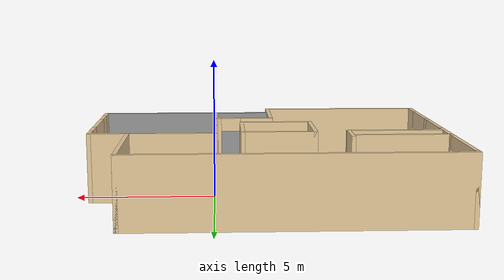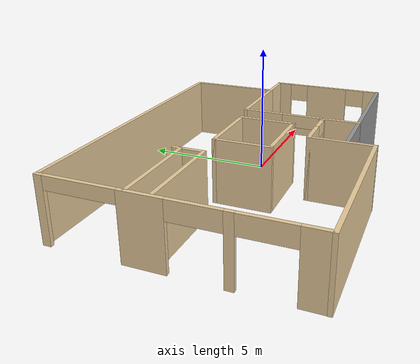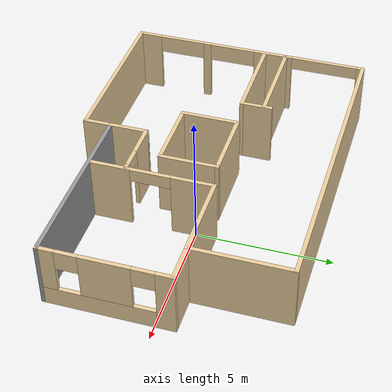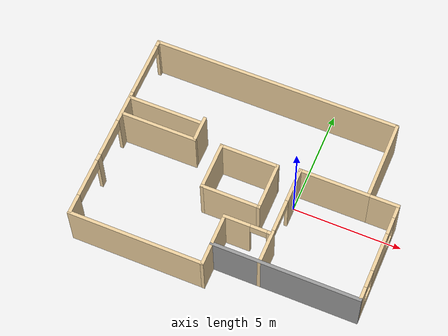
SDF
<?xml version='1.0'?>
<sdf version='1.6'>
  <model name='House'>
    <pose frame=''>-1.94291 -0.301498 0 0 -0 0</pose>
    <link name='Wall_1'>
      <pose frame=''>-6.34695 0.039471 0 0 -0 1.5708</pose>
      <visual name='Wall_1_Visual_0'>
        <pose frame=''>-4.18586 0 1.25 0 -0 0</pose>
        <geometry>
          <box>
            <size>0.878291 0.15 2.5</size>
          </box>
        </geometry>
        <material>
          <script>
            <uri>file://media/materials/scripts/gazebo.material</uri>
            <name>Gazebo/Grey</name>
          </script>
          <ambient>0.921569 0.807843 0.615686 1</ambient>
        </material>
        <meta>
          <layer>0</layer>
        </meta>
      </visual>
      <collision name='Wall_1_Collision_0'>
        <geometry>
          <box>
            <size>0.878291 0.15 2.5</size>
          </box>
        </geometry>
        <pose frame=''>-4.18586 0 1.25 0 -0 0</pose>
      </collision>
      <visual name='Wall_1_Visual_1'>
        <pose frame=''>-1.78871 0 1.25 0 -0 0</pose>
        <geometry>
          <box>
            <size>0.316 0.15 2.5</size>
          </box>
        </geometry>
        <material>
          <script>
            <uri>file://media/materials/scripts/gazebo.material</uri>
            <name>Gazebo/Grey</name>
          </script>
          <ambient>0.921569 0.807843 0.615686 1</ambient>
        </material>
        <meta>
          <layer>0</layer>
        </meta>
      </visual>
      <collision name='Wall_1_Collision_1'>
        <geometry>
          <box>
            <size>0.316 0.15 2.5</size>
          </box>
        </geometry>
        <pose frame=''>-1.78871 0 1.25 0 -0 0</pose>
      </collision>
      <visual name='Wall_1_Visual_2'>
        <pose frame=''>0.943988 0 1.25 0 -0 0</pose>
        <geometry>
          <box>
            <size>1.5494 0.15 2.5</size>
          </box>
        </geometry>
        <material>
          <script>
            <uri>file://media/materials/scripts/gazebo.material</uri>
            <name>Gazebo/Grey</name>
          </script>
          <ambient>0.921569 0.807843 0.615686 1</ambient>
        </material>
        <meta>
          <layer>0</layer>
        </meta>
      </visual>
      <collision name='Wall_1_Collision_2'>
        <geometry>
          <box>
            <size>1.5494 0.15 2.5</size>
          </box>
        </geometry>
        <pose frame=''>0.943988 0 1.25 0 -0 0</pose>
      </collision>
      <visual name='Wall_1_Visual_3'>
        <pose frame=''>4.46934 0 1.25 0 -0 0</pose>
        <geometry>
          <box>
            <size>0.311314 0.15 2.5</size>
          </box>
        </geometry>
        <material>
          <script>
            <uri>file://media/materials/scripts/gazebo.material</uri>
            <name>Gazebo/Grey</name>
          </script>
          <ambient>0.921569 0.807843 0.615686 1</ambient>
        </material>
        <meta>
          <layer>0</layer>
        </meta>
      </visual>
      <collision name='Wall_1_Collision_3'>
        <geometry>
          <box>
            <size>0.311314 0.15 2.5</size>
          </box>
        </geometry>
        <pose frame=''>4.46934 0 1.25 0 -0 0</pose>
      </collision>
      <visual name='Wall_1_Visual_4'>
        <pose frame=''>-2.84671 0 2.15 0 -0 0</pose>
        <geometry>
          <box>
            <size>1.8 0.15 0.7</size>
          </box>
        </geometry>
        <material>
          <script>
            <uri>file://media/materials/scripts/gazebo.material</uri>
            <name>Gazebo/Grey</name>
          </script>
          <ambient>0.921569 0.807843 0.615686 1</ambient>
        </material>
        <meta>
          <layer>0</layer>
        </meta>
      </visual>
      <collision name='Wall_1_Collision_4'>
        <geometry>
          <box>
            <size>1.8 0.15 0.7</size>
          </box>
        </geometry>
        <pose frame=''>-2.84671 0 2.15 0 -0 0</pose>
      </collision>
      <visual name='Wall_1_Visual_5'>
        <pose frame=''>-0.730709 0 2.15 0 -0 0</pose>
        <geometry>
          <box>
            <size>1.8 0.15 0.7</size>
          </box>
        </geometry>
        <material>
          <script>
            <uri>file://media/materials/scripts/gazebo.material</uri>
            <name>Gazebo/Grey</name>
          </script>
          <ambient>0.921569 0.807843 0.615686 1</ambient>
        </material>
        <meta>
          <layer>0</layer>
        </meta>
      </visual>
      <collision name='Wall_1_Collision_5'>
        <geometry>
          <box>
            <size>1.8 0.15 0.7</size>
          </box>
        </geometry>
        <pose frame=''>-0.730709 0 2.15 0 -0 0</pose>
      </collision>
      <visual name='Wall_1_Visual_6'>
        <pose frame=''>3.01619 0 2.25 0 -0 0</pose>
        <geometry>
          <box>
            <size>2.595 0.15 0.5</size>
          </box>
        </geometry>
        <material>
          <script>
            <uri>file://media/materials/scripts/gazebo.material</uri>
            <name>Gazebo/Grey</name>
          </script>
          <ambient>0.921569 0.807843 0.615686 1</ambient>
        </material>
        <meta>
          <layer>0</layer>
        </meta>
      </visual>
      <collision name='Wall_1_Collision_6'>
        <geometry>
          <box>
            <size>2.595 0.15 0.5</size>
          </box>
        </geometry>
        <pose frame=''>3.01619 0 2.25 0 -0 0</pose>
      </collision>
    </link>
    <link name='Wall_10'>
      <collision name='Wall_10_Collision'>
        <geometry>
          <box>
            <size>3.25 0.15 2.5</size>
          </box>
        </geometry>
        <pose frame=''>0 0 1.25 0 -0 0</pose>
      </collision>
      <visual name='Wall_10_Visual'>
        <pose frame=''>0 0 1.25 0 -0 0</pose>
        <geometry>
          <box>
            <size>3.25 0.15 2.5</size>
          </box>
        </geometry>
        <material>
          <script>
            <uri>file://media/materials/scripts/gazebo.material</uri>
            <name>Gazebo/Grey</name>
          </script>
          <ambient>0.921569 0.807843 0.615686 1</ambient>
        </material>
        <meta>
          <layer>0</layer>
        </meta>
      </visual>
      <pose frame=''>3.45305 0.989471 0 0 -0 3.14159</pose>
    </link>
    <link name='Wall_11'>
      <pose frame=''>1.90305 -1.31053 0 0 0 -1.5708</pose>
      <visual name='Wall_11_Visual_0'>
        <pose frame=''>-1.55351 0 1.25 0 -0 0</pose>
        <geometry>
          <box>
            <size>1.64298 0.15 2.5</size>
          </box>
        </geometry>
        <material>
          <script>
            <uri>file://media/materials/scripts/gazebo.material</uri>
            <name>Gazebo/Grey</name>
          </script>
          <ambient>0.921569 0.807843 0.615686 1</ambient>
        </material>
        <meta>
          <layer>0</layer>
        </meta>
      </visual>
      <collision name='Wall_11_Collision_0'>
        <geometry>
          <box>
            <size>1.64298 0.15 2.5</size>
          </box>
        </geometry>
        <pose frame=''>-1.55351 0 1.25 0 -0 0</pose>
      </collision>
      <visual name='Wall_11_Visual_1'>
        <pose frame=''>1.57149 0 1.25 0 -0 0</pose>
        <geometry>
          <box>
            <size>1.60702 0.15 2.5</size>
          </box>
        </geometry>
        <material>
          <script>
            <uri>file://media/materials/scripts/gazebo.material</uri>
            <name>Gazebo/Grey</name>
          </script>
          <ambient>0.921569 0.807843 0.615686 1</ambient>
        </material>
        <meta>
          <layer>0</layer>
        </meta>
      </visual>
      <collision name='Wall_11_Collision_1'>
        <geometry>
          <box>
            <size>1.60702 0.15 2.5</size>
          </box>
        </geometry>
        <pose frame=''>1.57149 0 1.25 0 -0 0</pose>
      </collision>
      <visual name='Wall_11_Visual_2'>
        <pose frame=''>0.017978 0 2.25 0 -0 0</pose>
        <geometry>
          <box>
            <size>1.5 0.15 0.5</size>
          </box>
        </geometry>
        <material>
          <script>
            <uri>file://media/materials/scripts/gazebo.material</uri>
            <name>Gazebo/Grey</name>
          </script>
          <ambient>0.921569 0.807843 0.615686 1</ambient>
        </material>
        <meta>
          <layer>0</layer>
        </meta>
      </visual>
      <collision name='Wall_11_Collision_2'>
        <geometry>
          <box>
            <size>1.5 0.15 0.5</size>
          </box>
        </geometry>
        <pose frame=''>0.017978 0 2.25 0 -0 0</pose>
      </collision>
    </link>
    <link name='Wall_18'>
      <collision name='Wall_18_Collision'>
        <geometry>
          <box>
            <size>2.5 0.15 2.5</size>
          </box>
        </geometry>
        <pose frame=''>0 0 1.25 0 -0 0</pose>
      </collision>
      <visual name='Wall_18_Visual'>
        <pose frame=''>0 0 1.25 0 -0 0</pose>
        <geometry>
          <box>
            <size>2.5 0.15 2.5</size>
          </box>
        </geometry>
        <material>
          <script>
            <uri>file://media/materials/scripts/gazebo.material</uri>
            <name>Gazebo/Grey</name>
          </script>
          <ambient>0.921569 0.807843 0.615686 1</ambient>
        </material>
        <meta>
          <layer>0</layer>
        </meta>
      </visual>
      <pose frame=''>-0.253052 -3.41447 0 0 -0 1.5708</pose>
    </link>
    <link name='Wall_2'>
      <collision name='Wall_2_Collision'>
        <geometry>
          <box>
            <size>11.5 0.15 2.5</size>
          </box>
        </geometry>
        <pose frame=''>0 0 1.25 0 -0 0</pose>
      </collision>
      <visual name='Wall_2_Visual'>
        <pose frame=''>0 0 1.25 0 -0 0</pose>
        <geometry>
          <box>
            <size>11.5 0.15 2.5</size>
          </box>
        </geometry>
        <material>
          <script>
            <uri>file://media/materials/scripts/gazebo.material</uri>
            <name>Gazebo/Grey</name>
          </script>
          <ambient>0.921569 0.807843 0.615686 1</ambient>
        </material>
        <meta>
          <layer>0</layer>
        </meta>
      </visual>
      <pose frame=''>-0.671948 4.58947 0 0 -0 0</pose>
    </link>
    <link name='Wall_20'>
      <pose frame=''>0.796948 -2.23947 0 0 -0 0</pose>
      <visual name='Wall_20_Visual_0'>
        <pose frame=''>-0.492928 0 1.25 0 -0 0</pose>
        <geometry>
          <box>
            <size>1.26415 0.15 2.5</size>
          </box>
        </geometry>
        <material>
          <script>
            <uri>file://media/materials/scripts/gazebo.material</uri>
            <name>Gazebo/Grey</name>
          </script>
          <ambient>0.921569 0.807843 0.615686 1</ambient>
        </material>
        <meta>
          <layer>0</layer>
        </meta>
      </visual>
      <collision name='Wall_20_Collision_0'>
        <geometry>
          <box>
            <size>1.26415 0.15 2.5</size>
          </box>
        </geometry>
        <pose frame=''>-0.492928 0 1.25 0 -0 0</pose>
      </collision>
      <visual name='Wall_20_Visual_1'>
        <pose frame=''>1.00707 0 1.25 0 -0 0</pose>
        <geometry>
          <box>
            <size>0.235855 0.15 2.5</size>
          </box>
        </geometry>
        <material>
          <script>
            <uri>file://media/materials/scripts/gazebo.material</uri>
            <name>Gazebo/Grey</name>
          </script>
          <ambient>0.921569 0.807843 0.615686 1</ambient>
        </material>
        <meta>
          <layer>0</layer>
        </meta>
      </visual>
      <collision name='Wall_20_Collision_1'>
        <geometry>
          <box>
            <size>0.235855 0.15 2.5</size>
          </box>
        </geometry>
        <pose frame=''>1.00707 0 1.25 0 -0 0</pose>
      </collision>
      <visual name='Wall_20_Visual_2'>
        <pose frame=''>0.514145 0 2.25 0 -0 0</pose>
        <geometry>
          <box>
            <size>0.75 0.15 0.5</size>
          </box>
        </geometry>
        <material>
          <script>
            <uri>file://media/materials/scripts/gazebo.material</uri>
            <name>Gazebo/Grey</name>
          </script>
          <ambient>0.921569 0.807843 0.615686 1</ambient>
        </material>
        <meta>
          <layer>0</layer>
        </meta>
      </visual>
      <collision name='Wall_20_Collision_2'>
        <geometry>
          <box>
            <size>0.75 0.15 0.5</size>
          </box>
        </geometry>
        <pose frame=''>0.514145 0 2.25 0 -0 0</pose>
      </collision>
    </link>
    <link name='Wall_26'>
      <collision name='Wall_26_Collision'>
        <geometry>
          <box>
            <size>2.75 0.15 2.5</size>
          </box>
        </geometry>
        <pose frame=''>0 0 1.25 0 -0 0</pose>
      </collision>
      <visual name='Wall_26_Visual'>
        <pose frame=''>0 0 1.25 0 -0 0</pose>
        <geometry>
          <box>
            <size>2.75 0.15 2.5</size>
          </box>
        </geometry>
        <material>
          <script>
            <uri>file://media/materials/scripts/gazebo.material</uri>
            <name>Gazebo/Grey</name>
          </script>
          <ambient>0.921569 0.807843 0.615686 1</ambient>
        </material>
        <meta>
          <layer>0</layer>
        </meta>
      </visual>
      <pose frame=''>-0.379097 0.799447 0 0 -0 3.14159</pose>
    </link>
    <link name='Wall_27'>
      <collision name='Wall_27_Collision'>
        <geometry>
          <box>
            <size>2.25 0.15 2.5</size>
          </box>
        </geometry>
        <pose frame=''>0 0 1.25 0 -0 0</pose>
      </collision>
      <visual name='Wall_27_Visual'>
        <pose frame=''>0 0 1.25 0 -0 0</pose>
        <geometry>
          <box>
            <size>2.25 0.15 2.5</size>
          </box>
        </geometry>
        <material>
          <script>
            <uri>file://media/materials/scripts/gazebo.material</uri>
            <name>Gazebo/Grey</name>
          </script>
          <ambient>0.921569 0.807843 0.615686 1</ambient>
        </material>
        <meta>
          <layer>0</layer>
        </meta>
      </visual>
      <pose frame=''>-1.6791 -0.250553 0 0 0 -1.5708</pose>
    </link>
    <link name='Wall_28'>
      <collision name='Wall_28_Collision'>
        <geometry>
          <box>
            <size>2.75 0.15 2.5</size>
          </box>
        </geometry>
        <pose frame=''>0 0 1.25 0 -0 0</pose>
      </collision>
      <visual name='Wall_28_Visual'>
        <pose frame=''>0 0 1.25 0 -0 0</pose>
        <geometry>
          <box>
            <size>2.75 0.15 2.5</size>
          </box>
        </geometry>
        <material>
          <script>
            <uri>file://media/materials/scripts/gazebo.material</uri>
            <name>Gazebo/Grey</name>
          </script>
          <ambient>0.921569 0.807843 0.615686 1</ambient>
        </material>
        <meta>
          <layer>0</layer>
        </meta>
      </visual>
      <pose frame=''>-0.379097 -1.30055 0 0 -0 0</pose>
    </link>
    <link name='Wall_29'>
      <collision name='Wall_29_Collision'>
        <geometry>
          <box>
            <size>2.25 0.15 2.5</size>
          </box>
        </geometry>
        <pose frame=''>0 0 1.25 0 -0 0</pose>
      </collision>
      <visual name='Wall_29_Visual'>
        <pose frame=''>0 0 1.25 0 -0 0</pose>
        <geometry>
          <box>
            <size>2.25 0.15 2.5</size>
          </box>
        </geometry>
        <material>
          <script>
            <uri>file://media/materials/scripts/gazebo.material</uri>
            <name>Gazebo/Grey</name>
          </script>
          <ambient>0.921569 0.807843 0.615686 1</ambient>
        </material>
        <meta>
          <layer>0</layer>
        </meta>
      </visual>
      <pose frame=''>0.920903 -0.250553 0 0 -0 1.5708</pose>
    </link>
    <link name='Wall_3'>
      <collision name='Wall_3_Collision'>
        <geometry>
          <box>
            <size>3.75 0.15 2.5</size>
          </box>
        </geometry>
        <pose frame=''>0 0 1.25 0 -0 0</pose>
      </collision>
      <visual name='Wall_3_Visual'>
        <pose frame=''>0 0 1.25 0 -0 0</pose>
        <geometry>
          <box>
            <size>3.75 0.15 2.5</size>
          </box>
        </geometry>
        <material>
          <script>
            <uri>file://media/materials/scripts/gazebo.material</uri>
            <name>Gazebo/Grey</name>
          </script>
          <ambient>0.921569 0.807843 0.615686 1</ambient>
        </material>
        <meta>
          <layer>0</layer>
        </meta>
      </visual>
      <pose frame=''>5.00305 2.78947 0 0 0 -1.5708</pose>
    </link>
    <link name='Wall_33'>
      <collision name='Wall_33_Collision'>
        <geometry>
          <box>
            <size>3.5 0.15 2.5</size>
          </box>
        </geometry>
        <pose frame=''>0 0 1.25 0 -0 0</pose>
      </collision>
      <visual name='Wall_33_Visual'>
        <pose frame=''>0 0 1.25 0 -0 0</pose>
        <geometry>
          <box>
            <size>3.5 0.15 2.5</size>
          </box>
        </geometry>
        <material>
          <script>
            <uri>file://media/materials/scripts/gazebo.material</uri>
            <name>Gazebo/Grey</name>
          </script>
          <ambient>0.921569 0.807843 0.615686 1</ambient>
        </material>
        <meta>
          <layer>0</layer>
        </meta>
      </visual>
      <pose frame=''>-4.61304 1.49905 0 0 -0 0</pose>
    </link>
    <link name='Wall_36'>
      <collision name='Wall_36_Collision'>
        <geometry>
          <box>
            <size>1.25 0.15 2.5</size>
          </box>
        </geometry>
        <pose frame=''>0 0 1.25 0 -0 0</pose>
      </collision>
      <visual name='Wall_36_Visual'>
        <pose frame=''>0 0 1.25 0 -0 0</pose>
        <geometry>
          <box>
            <size>1.25 0.15 2.5</size>
          </box>
        </geometry>
        <material>
          <script>
            <uri>file://media/materials/scripts/gazebo.material</uri>
            <name>Gazebo/Grey</name>
          </script>
          <ambient>0.921569 0.807843 0.615686 1</ambient>
        </material>
        <meta>
          <layer>0</layer>
        </meta>
      </visual>
      <pose frame=''>-2.88129 1.19239 0 0 0 -1.5708</pose>
    </link>
    <link name='Wall_37'>
      <collision name='Wall_37_Collision'>
        <geometry>
          <box>
            <size>3.5 0.15 2.5</size>
          </box>
        </geometry>
        <pose frame=''>0 0 1.25 0 -0 0</pose>
      </collision>
      <visual name='Wall_37_Visual'>
        <pose frame=''>0 0 1.25 0 -0 0</pose>
        <geometry>
          <box>
            <size>3.5 0.15 2.5</size>
          </box>
        </geometry>
        <material>
          <script>
            <uri>file://media/materials/scripts/gazebo.material</uri>
            <name>Gazebo/Grey</name>
          </script>
          <ambient>0.921569 0.807843 0.615686 1</ambient>
        </material>
        <meta>
          <layer>0</layer>
        </meta>
      </visual>
      <pose frame=''>-4.55628 0.642389 0 0 -0 3.14159</pose>
    </link>
    <link name='Wall_39'>
      <collision name='Wall_39_Collision'>
        <geometry>
          <box>
            <size>6.75 0.15 2.5</size>
          </box>
        </geometry>
        <pose frame=''>0 0 1.25 0 -0 0</pose>
      </collision>
      <visual name='Wall_39_Visual'>
        <pose frame=''>0 0 1.25 0 -0 0</pose>
        <geometry>
          <box>
            <size>6.75 0.15 2.5</size>
          </box>
        </geometry>
        <material>
          <script>
            <uri>file://media/materials/scripts/gazebo.material</uri>
            <name>Gazebo/Grey</name>
          </script>
          <ambient>1 1 1 1</ambient>
        </material>
        <meta>
          <layer>0</layer>
        </meta>
      </visual>
      <pose frame=''>3.05305 -3.61053 0 0 -0 3.14159</pose>
    </link>
    <link name='Wall_4'>
      <collision name='Wall_4_Collision'>
        <geometry>
          <box>
            <size>1.5 0.15 2.5</size>
          </box>
        </geometry>
        <pose frame=''>0 0 1.25 0 -0 0</pose>
      </collision>
      <visual name='Wall_4_Visual'>
        <pose frame=''>0 0 1.25 0 -0 0</pose>
        <geometry>
          <box>
            <size>1.5 0.15 2.5</size>
          </box>
        </geometry>
        <material>
          <script>
            <uri>file://media/materials/scripts/gazebo.material</uri>
            <name>Gazebo/Grey</name>
          </script>
          <ambient>0.921569 0.807843 0.615686 1</ambient>
        </material>
        <meta>
          <layer>0</layer>
        </meta>
      </visual>
      <pose frame=''>5.67805 0.989471 0 0 -0 0</pose>
    </link>
    <link name='Wall_5'>
      <pose frame=''>6.35305 -1.31053 0 0 0 -1.5708</pose>
      <visual name='Wall_5_Visual_0'>
        <pose frame=''>-2.041 0 1.25 0 -0 0</pose>
        <geometry>
          <box>
            <size>0.668009 0.15 2.5</size>
          </box>
        </geometry>
        <material>
          <script>
            <uri>file://media/materials/scripts/gazebo.material</uri>
            <name>Gazebo/Grey</name>
          </script>
          <ambient>0.921569 0.807843 0.615686 1</ambient>
        </material>
        <meta>
          <layer>0</layer>
        </meta>
      </visual>
      <collision name='Wall_5_Collision_0'>
        <geometry>
          <box>
            <size>0.668009 0.15 2.5</size>
          </box>
        </geometry>
        <pose frame=''>-2.041 0 1.25 0 -0 0</pose>
      </collision>
      <visual name='Wall_5_Visual_1'>
        <pose frame=''>0.334004 0 0.375 0 -0 0</pose>
        <geometry>
          <box>
            <size>4.08199 0.15 0.75</size>
          </box>
        </geometry>
        <material>
          <script>
            <uri>file://media/materials/scripts/gazebo.material</uri>
            <name>Gazebo/Grey</name>
          </script>
          <ambient>0.921569 0.807843 0.615686 1</ambient>
        </material>
        <meta>
          <layer>0</layer>
        </meta>
      </visual>
      <collision name='Wall_5_Collision_1'>
        <geometry>
          <box>
            <size>4.08199 0.15 0.75</size>
          </box>
        </geometry>
        <pose frame=''>0.334004 0 0.375 0 -0 0</pose>
      </collision>
      <visual name='Wall_5_Visual_2'>
        <pose frame=''>-0.004329 0 1.625 0 -0 0</pose>
        <geometry>
          <box>
            <size>1.80533 0.15 1.75</size>
          </box>
        </geometry>
        <material>
          <script>
            <uri>file://media/materials/scripts/gazebo.material</uri>
            <name>Gazebo/Grey</name>
          </script>
          <ambient>0.921569 0.807843 0.615686 1</ambient>
        </material>
        <meta>
          <layer>0</layer>
        </meta>
      </visual>
      <collision name='Wall_5_Collision_2'>
        <geometry>
          <box>
            <size>1.80533 0.15 1.75</size>
          </box>
        </geometry>
        <pose frame=''>-0.004329 0 1.625 0 -0 0</pose>
      </collision>
      <visual name='Wall_5_Visual_3'>
        <pose frame=''>2.03667 0 1.625 0 -0 0</pose>
        <geometry>
          <box>
            <size>0.676666 0.15 1.75</size>
          </box>
        </geometry>
        <material>
          <script>
            <uri>file://media/materials/scripts/gazebo.material</uri>
            <name>Gazebo/Grey</name>
          </script>
          <ambient>0.921569 0.807843 0.615686 1</ambient>
        </material>
        <meta>
          <layer>0</layer>
        </meta>
      </visual>
      <collision name='Wall_5_Collision_3'>
        <geometry>
          <box>
            <size>0.676666 0.15 1.75</size>
          </box>
        </geometry>
        <pose frame=''>2.03667 0 1.625 0 -0 0</pose>
      </collision>
      <visual name='Wall_5_Visual_4'>
        <pose frame=''>-1.30699 0 2.125 0 -0 0</pose>
        <geometry>
          <box>
            <size>0.8 0.15 0.75</size>
          </box>
        </geometry>
        <material>
          <script>
            <uri>file://media/materials/scripts/gazebo.material</uri>
            <name>Gazebo/Grey</name>
          </script>
          <ambient>0.921569 0.807843 0.615686 1</ambient>
        </material>
        <meta>
          <layer>0</layer>
        </meta>
      </visual>
      <collision name='Wall_5_Collision_4'>
        <geometry>
          <box>
            <size>0.8 0.15 0.75</size>
          </box>
        </geometry>
        <pose frame=''>-1.30699 0 2.125 0 -0 0</pose>
      </collision>
      <visual name='Wall_5_Visual_5'>
        <pose frame=''>1.29833 0 2.125 0 -0 0</pose>
        <geometry>
          <box>
            <size>0.8 0.15 0.75</size>
          </box>
        </geometry>
        <material>
          <script>
            <uri>file://media/materials/scripts/gazebo.material</uri>
            <name>Gazebo/Grey</name>
          </script>
          <ambient>0.921569 0.807843 0.615686 1</ambient>
        </material>
        <meta>
          <layer>0</layer>
        </meta>
      </visual>
      <collision name='Wall_5_Collision_5'>
        <geometry>
          <box>
            <size>0.8 0.15 0.75</size>
          </box>
        </geometry>
        <pose frame=''>1.29833 0 2.125 0 -0 0</pose>
      </collision>
    </link>
    <link name='Wall_8'>
      <collision name='Wall_8_Collision'>
        <geometry>
          <box>
            <size>6.25 0.15 2.5</size>
          </box>
        </geometry>
        <pose frame=''>0 0 1.25 0 -0 0</pose>
      </collision>
      <visual name='Wall_8_Visual'>
        <pose frame=''>0 0 1.25 0 -0 0</pose>
        <geometry>
          <box>
            <size>6.25 0.15 2.5</size>
          </box>
        </geometry>
        <material>
          <script>
            <uri>file://media/materials/scripts/gazebo.material</uri>
            <name>Gazebo/Grey</name>
          </script>
          <ambient>0.921569 0.807843 0.615686 1</ambient>
        </material>
        <meta>
          <layer>0</layer>
        </meta>
      </visual>
      <pose frame=''>-3.30305 -4.58515 0 0 -0 3.14159</pose>
    </link>
    <static>1</static>
  </model>
</sdf>
